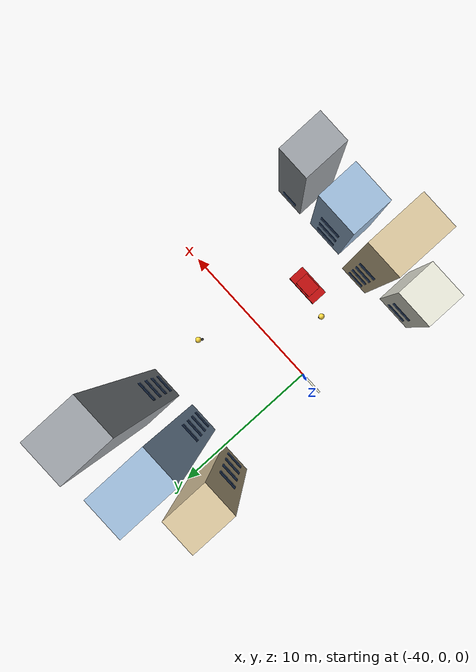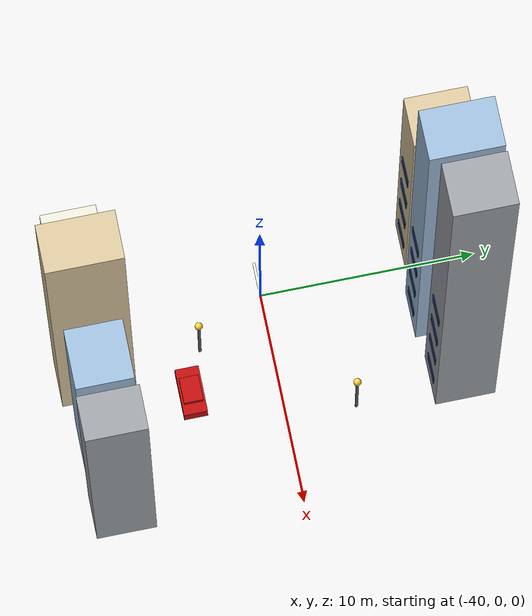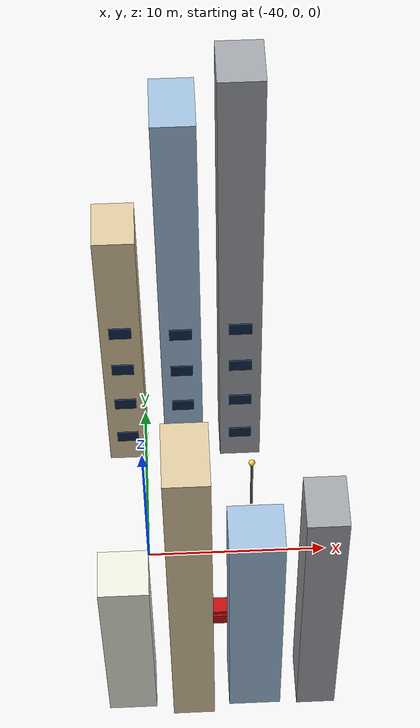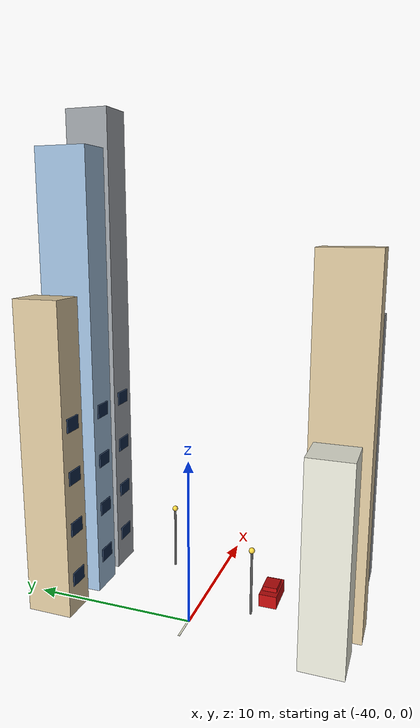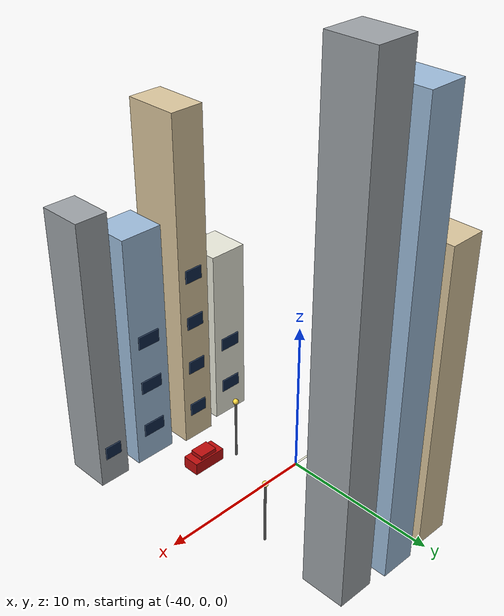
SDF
<sdf version="1.7">
 <world name="urban_street">
  <model name="white_lane_marking_00">
   <static>true</static>
   <pose>-40 0 0.055 0 0 0.0</pose>
   <link name="link">
    <collision name="collision"><geometry><box><size>3.2 0.12 0.02</size></box></geometry></collision>
    <visual name="visual">
     <geometry><box><size>3.2 0.12 0.02</size></box></geometry>
     <material>
      <ambient>0.95 0.95 0.85 1</ambient>
      <diffuse>0.95 0.95 0.85 1</diffuse>
      <specular>0.1 0.1 0.1 1</specular>
     </material>
    </visual>
   </link>
  </model>
  <model name="white_lane_marking_01">
   <static>true</static>
   <pose>-32 0 0.055 0 0 0.0</pose>
   <link name="link">
    <collision name="collision"><geometry><box><size>3.2 0.12 0.02</size></box></geometry></collision>
    <visual name="visual">
     <geometry><box><size>3.2 0.12 0.02</size></box></geometry>
     <material>
      <ambient>0.95 0.95 0.85 1</ambient>
      <diffuse>0.95 0.95 0.85 1</diffuse>
      <specular>0.1 0.1 0.1 1</specular>
     </material>
    </visual>
   </link>
  </model>
  <model name="building_facade_01">
   <static>true</static>
   <pose>-41.0 -8.2 5.94 0 0 0.0</pose>
   <link name="link">
    <collision name="collision"><geometry><box><size>2.51 2.53 11.88</size></box></geometry></collision>
    <visual name="visual">
     <geometry><box><size>2.51 2.53 11.88</size></box></geometry>
     <material>
      <ambient>0.92 0.92 0.86 1</ambient>
      <diffuse>0.92 0.92 0.86 1</diffuse>
      <specular>0.1 0.1 0.1 1</specular>
     </material>
    </visual>
   </link>
  </model>
  <model name="building_facade_01_window_0">
   <static>true</static>
   <pose>-41.0 -6.9 2.2 0 0 0.0</pose>
   <link name="link">
    <collision name="collision"><geometry><box><size>1.38 0.05 0.85</size></box></geometry></collision>
    <visual name="visual">
     <geometry><box><size>1.38 0.05 0.85</size></box></geometry>
     <material>
      <ambient>0.05 0.14 0.28 1</ambient>
      <diffuse>0.05 0.14 0.28 1</diffuse>
      <specular>0.1 0.1 0.1 1</specular>
     </material>
    </visual>
   </link>
  </model>
  <model name="building_facade_01_window_1">
   <static>true</static>
   <pose>-41.0 -6.9 5.4 0 0 0.0</pose>
   <link name="link">
    <collision name="collision"><geometry><box><size>1.38 0.05 0.85</size></box></geometry></collision>
    <visual name="visual">
     <geometry><box><size>1.38 0.05 0.85</size></box></geometry>
     <material>
      <ambient>0.05 0.14 0.28 1</ambient>
      <diffuse>0.05 0.14 0.28 1</diffuse>
      <specular>0.1 0.1 0.1 1</specular>
     </material>
    </visual>
   </link>
  </model>
  <model name="building_facade_02">
   <static>true</static>
   <pose>-37.75 -8.2 10.96 0 0 0.0</pose>
   <link name="link">
    <collision name="collision"><geometry><box><size>2.18 3.46 21.92</size></box></geometry></collision>
    <visual name="visual">
     <geometry><box><size>2.18 3.46 21.92</size></box></geometry>
     <material>
      <ambient>0.86 0.78 0.62 1</ambient>
      <diffuse>0.86 0.78 0.62 1</diffuse>
      <specular>0.1 0.1 0.1 1</specular>
     </material>
    </visual>
   </link>
  </model>
  <model name="building_facade_02_window_0">
   <static>true</static>
   <pose>-37.75 -6.44 2.2 0 0 0.0</pose>
   <link name="link">
    <collision name="collision"><geometry><box><size>1.2 0.05 0.85</size></box></geometry></collision>
    <visual name="visual">
     <geometry><box><size>1.2 0.05 0.85</size></box></geometry>
     <material>
      <ambient>0.05 0.14 0.28 1</ambient>
      <diffuse>0.05 0.14 0.28 1</diffuse>
      <specular>0.1 0.1 0.1 1</specular>
     </material>
    </visual>
   </link>
  </model>
  <model name="building_facade_02_window_1">
   <static>true</static>
   <pose>-37.75 -6.44 5.4 0 0 0.0</pose>
   <link name="link">
    <collision name="collision"><geometry><box><size>1.2 0.05 0.85</size></box></geometry></collision>
    <visual name="visual">
     <geometry><box><size>1.2 0.05 0.85</size></box></geometry>
     <material>
      <ambient>0.05 0.14 0.28 1</ambient>
      <diffuse>0.05 0.14 0.28 1</diffuse>
      <specular>0.1 0.1 0.1 1</specular>
     </material>
    </visual>
   </link>
  </model>
  <model name="building_facade_02_window_2">
   <static>true</static>
   <pose>-37.75 -6.44 8.6 0 0 0.0</pose>
   <link name="link">
    <collision name="collision"><geometry><box><size>1.2 0.05 0.85</size></box></geometry></collision>
    <visual name="visual">
     <geometry><box><size>1.2 0.05 0.85</size></box></geometry>
     <material>
      <ambient>0.05 0.14 0.28 1</ambient>
      <diffuse>0.05 0.14 0.28 1</diffuse>
      <specular>0.1 0.1 0.1 1</specular>
     </material>
    </visual>
   </link>
  </model>
  <model name="building_facade_02_window_3">
   <static>true</static>
   <pose>-37.75 -6.44 11.8 0 0 0.0</pose>
   <link name="link">
    <collision name="collision"><geometry><box><size>1.2 0.05 0.85</size></box></geometry></collision>
    <visual name="visual">
     <geometry><box><size>1.2 0.05 0.85</size></box></geometry>
     <material>
      <ambient>0.05 0.14 0.28 1</ambient>
      <diffuse>0.05 0.14 0.28 1</diffuse>
      <specular>0.1 0.1 0.1 1</specular>
     </material>
    </visual>
   </link>
  </model>
  <model name="building_facade_03">
   <static>true</static>
   <pose>-34.5 -8.2 7.77 0 0 0.0</pose>
   <link name="link">
    <collision name="collision"><geometry><box><size>2.71 2.61 15.55</size></box></geometry></collision>
    <visual name="visual">
     <geometry><box><size>2.71 2.61 15.55</size></box></geometry>
     <material>
      <ambient>0.62 0.74 0.86 1</ambient>
      <diffuse>0.62 0.74 0.86 1</diffuse>
      <specular>0.1 0.1 0.1 1</specular>
     </material>
    </visual>
   </link>
  </model>
  <model name="building_facade_03_window_0">
   <static>true</static>
   <pose>-34.5 -6.86 2.2 0 0 0.0</pose>
   <link name="link">
    <collision name="collision"><geometry><box><size>1.49 0.05 0.85</size></box></geometry></collision>
    <visual name="visual">
     <geometry><box><size>1.49 0.05 0.85</size></box></geometry>
     <material>
      <ambient>0.05 0.14 0.28 1</ambient>
      <diffuse>0.05 0.14 0.28 1</diffuse>
      <specular>0.1 0.1 0.1 1</specular>
     </material>
    </visual>
   </link>
  </model>
  <model name="building_facade_03_window_1">
   <static>true</static>
   <pose>-34.5 -6.86 5.4 0 0 0.0</pose>
   <link name="link">
    <collision name="collision"><geometry><box><size>1.49 0.05 0.85</size></box></geometry></collision>
    <visual name="visual">
     <geometry><box><size>1.49 0.05 0.85</size></box></geometry>
     <material>
      <ambient>0.05 0.14 0.28 1</ambient>
      <diffuse>0.05 0.14 0.28 1</diffuse>
      <specular>0.1 0.1 0.1 1</specular>
     </material>
    </visual>
   </link>
  </model>
  <model name="building_facade_03_window_2">
   <static>true</static>
   <pose>-34.5 -6.86 8.6 0 0 0.0</pose>
   <link name="link">
    <collision name="collision"><geometry><box><size>1.49 0.05 0.85</size></box></geometry></collision>
    <visual name="visual">
     <geometry><box><size>1.49 0.05 0.85</size></box></geometry>
     <material>
      <ambient>0.05 0.14 0.28 1</ambient>
      <diffuse>0.05 0.14 0.28 1</diffuse>
      <specular>0.1 0.1 0.1 1</specular>
     </material>
    </visual>
   </link>
  </model>
  <model name="building_facade_04">
   <static>true</static>
   <pose>-31.25 -8.2 8.82 0 0 0.0</pose>
   <link name="link">
    <collision name="collision"><geometry><box><size>2.02 2.78 17.63</size></box></geometry></collision>
    <visual name="visual">
     <geometry><box><size>2.02 2.78 17.63</size></box></geometry>
     <material>
      <ambient>0.62 0.64 0.66 1</ambient>
      <diffuse>0.62 0.64 0.66 1</diffuse>
      <specular>0.1 0.1 0.1 1</specular>
     </material>
    </visual>
   </link>
  </model>
  <model name="building_facade_04_window_0">
   <static>true</static>
   <pose>-31.25 -6.78 2.2 0 0 0.0</pose>
   <link name="link">
    <collision name="collision"><geometry><box><size>1.11 0.05 0.85</size></box></geometry></collision>
    <visual name="visual">
     <geometry><box><size>1.11 0.05 0.85</size></box></geometry>
     <material>
      <ambient>0.05 0.14 0.28 1</ambient>
      <diffuse>0.05 0.14 0.28 1</diffuse>
      <specular>0.1 0.1 0.1 1</specular>
     </material>
    </visual>
   </link>
  </model>
  <model name="building_facade_27">
   <static>true</static>
   <pose>-41.0 8.2 9.52 0 0 0.0</pose>
   <link name="link">
    <collision name="collision"><geometry><box><size>2.21 2.82 19.03</size></box></geometry></collision>
    <visual name="visual">
     <geometry><box><size>2.21 2.82 19.03</size></box></geometry>
     <material>
      <ambient>0.86 0.78 0.62 1</ambient>
      <diffuse>0.86 0.78 0.62 1</diffuse>
      <specular>0.1 0.1 0.1 1</specular>
     </material>
    </visual>
   </link>
  </model>
  <model name="building_facade_27_window_0">
   <static>true</static>
   <pose>-41.0 6.76 2.2 0 0 0.0</pose>
   <link name="link">
    <collision name="collision"><geometry><box><size>1.22 0.05 0.85</size></box></geometry></collision>
    <visual name="visual">
     <geometry><box><size>1.22 0.05 0.85</size></box></geometry>
     <material>
      <ambient>0.05 0.14 0.28 1</ambient>
      <diffuse>0.05 0.14 0.28 1</diffuse>
      <specular>0.1 0.1 0.1 1</specular>
     </material>
    </visual>
   </link>
  </model>
  <model name="building_facade_27_window_1">
   <static>true</static>
   <pose>-41.0 6.76 5.4 0 0 0.0</pose>
   <link name="link">
    <collision name="collision"><geometry><box><size>1.22 0.05 0.85</size></box></geometry></collision>
    <visual name="visual">
     <geometry><box><size>1.22 0.05 0.85</size></box></geometry>
     <material>
      <ambient>0.05 0.14 0.28 1</ambient>
      <diffuse>0.05 0.14 0.28 1</diffuse>
      <specular>0.1 0.1 0.1 1</specular>
     </material>
    </visual>
   </link>
  </model>
  <model name="building_facade_27_window_2">
   <static>true</static>
   <pose>-41.0 6.76 8.6 0 0 0.0</pose>
   <link name="link">
    <collision name="collision"><geometry><box><size>1.22 0.05 0.85</size></box></geometry></collision>
    <visual name="visual">
     <geometry><box><size>1.22 0.05 0.85</size></box></geometry>
     <material>
      <ambient>0.05 0.14 0.28 1</ambient>
      <diffuse>0.05 0.14 0.28 1</diffuse>
      <specular>0.1 0.1 0.1 1</specular>
     </material>
    </visual>
   </link>
  </model>
  <model name="building_facade_27_window_3">
   <static>true</static>
   <pose>-41.0 6.76 11.8 0 0 0.0</pose>
   <link name="link">
    <collision name="collision"><geometry><box><size>1.22 0.05 0.85</size></box></geometry></collision>
    <visual name="visual">
     <geometry><box><size>1.22 0.05 0.85</size></box></geometry>
     <material>
      <ambient>0.05 0.14 0.28 1</ambient>
      <diffuse>0.05 0.14 0.28 1</diffuse>
      <specular>0.1 0.1 0.1 1</specular>
     </material>
    </visual>
   </link>
  </model>
  <model name="building_facade_28">
   <static>true</static>
   <pose>-37.75 8.2 13.72 0 0 0.0</pose>
   <link name="link">
    <collision name="collision"><geometry><box><size>2.21 3.26 27.45</size></box></geometry></collision>
    <visual name="visual">
     <geometry><box><size>2.21 3.26 27.45</size></box></geometry>
     <material>
      <ambient>0.62 0.74 0.86 1</ambient>
      <diffuse>0.62 0.74 0.86 1</diffuse>
      <specular>0.1 0.1 0.1 1</specular>
     </material>
    </visual>
   </link>
  </model>
  <model name="building_facade_28_window_0">
   <static>true</static>
   <pose>-37.75 6.54 2.2 0 0 0.0</pose>
   <link name="link">
    <collision name="collision"><geometry><box><size>1.22 0.05 0.85</size></box></geometry></collision>
    <visual name="visual">
     <geometry><box><size>1.22 0.05 0.85</size></box></geometry>
     <material>
      <ambient>0.05 0.14 0.28 1</ambient>
      <diffuse>0.05 0.14 0.28 1</diffuse>
      <specular>0.1 0.1 0.1 1</specular>
     </material>
    </visual>
   </link>
  </model>
  <model name="building_facade_28_window_1">
   <static>true</static>
   <pose>-37.75 6.54 5.4 0 0 0.0</pose>
   <link name="link">
    <collision name="collision"><geometry><box><size>1.22 0.05 0.85</size></box></geometry></collision>
    <visual name="visual">
     <geometry><box><size>1.22 0.05 0.85</size></box></geometry>
     <material>
      <ambient>0.05 0.14 0.28 1</ambient>
      <diffuse>0.05 0.14 0.28 1</diffuse>
      <specular>0.1 0.1 0.1 1</specular>
     </material>
    </visual>
   </link>
  </model>
  <model name="building_facade_28_window_2">
   <static>true</static>
   <pose>-37.75 6.54 8.6 0 0 0.0</pose>
   <link name="link">
    <collision name="collision"><geometry><box><size>1.22 0.05 0.85</size></box></geometry></collision>
    <visual name="visual">
     <geometry><box><size>1.22 0.05 0.85</size></box></geometry>
     <material>
      <ambient>0.05 0.14 0.28 1</ambient>
      <diffuse>0.05 0.14 0.28 1</diffuse>
      <specular>0.1 0.1 0.1 1</specular>
     </material>
    </visual>
   </link>
  </model>
  <model name="building_facade_28_window_3">
   <static>true</static>
   <pose>-37.75 6.54 11.8 0 0 0.0</pose>
   <link name="link">
    <collision name="collision"><geometry><box><size>1.22 0.05 0.85</size></box></geometry></collision>
    <visual name="visual">
     <geometry><box><size>1.22 0.05 0.85</size></box></geometry>
     <material>
      <ambient>0.05 0.14 0.28 1</ambient>
      <diffuse>0.05 0.14 0.28 1</diffuse>
      <specular>0.1 0.1 0.1 1</specular>
     </material>
    </visual>
   </link>
  </model>
  <model name="building_facade_29">
   <static>true</static>
   <pose>-34.5 8.2 14.97 0 0 0.0</pose>
   <link name="link">
    <collision name="collision"><geometry><box><size>2.32 2.79 29.94</size></box></geometry></collision>
    <visual name="visual">
     <geometry><box><size>2.32 2.79 29.94</size></box></geometry>
     <material>
      <ambient>0.62 0.64 0.66 1</ambient>
      <diffuse>0.62 0.64 0.66 1</diffuse>
      <specular>0.1 0.1 0.1 1</specular>
     </material>
    </visual>
   </link>
  </model>
  <model name="building_facade_29_window_0">
   <static>true</static>
   <pose>-34.5 6.78 2.2 0 0 0.0</pose>
   <link name="link">
    <collision name="collision"><geometry><box><size>1.28 0.05 0.85</size></box></geometry></collision>
    <visual name="visual">
     <geometry><box><size>1.28 0.05 0.85</size></box></geometry>
     <material>
      <ambient>0.05 0.14 0.28 1</ambient>
      <diffuse>0.05 0.14 0.28 1</diffuse>
      <specular>0.1 0.1 0.1 1</specular>
     </material>
    </visual>
   </link>
  </model>
  <model name="building_facade_29_window_1">
   <static>true</static>
   <pose>-34.5 6.78 5.4 0 0 0.0</pose>
   <link name="link">
    <collision name="collision"><geometry><box><size>1.28 0.05 0.85</size></box></geometry></collision>
    <visual name="visual">
     <geometry><box><size>1.28 0.05 0.85</size></box></geometry>
     <material>
      <ambient>0.05 0.14 0.28 1</ambient>
      <diffuse>0.05 0.14 0.28 1</diffuse>
      <specular>0.1 0.1 0.1 1</specular>
     </material>
    </visual>
   </link>
  </model>
  <model name="building_facade_29_window_2">
   <static>true</static>
   <pose>-34.5 6.78 8.6 0 0 0.0</pose>
   <link name="link">
    <collision name="collision"><geometry><box><size>1.28 0.05 0.85</size></box></geometry></collision>
    <visual name="visual">
     <geometry><box><size>1.28 0.05 0.85</size></box></geometry>
     <material>
      <ambient>0.05 0.14 0.28 1</ambient>
      <diffuse>0.05 0.14 0.28 1</diffuse>
      <specular>0.1 0.1 0.1 1</specular>
     </material>
    </visual>
   </link>
  </model>
  <model name="building_facade_29_window_3">
   <static>true</static>
   <pose>-34.5 6.78 11.8 0 0 0.0</pose>
   <link name="link">
    <collision name="collision"><geometry><box><size>1.28 0.05 0.85</size></box></geometry></collision>
    <visual name="visual">
     <geometry><box><size>1.28 0.05 0.85</size></box></geometry>
     <material>
      <ambient>0.05 0.14 0.28 1</ambient>
      <diffuse>0.05 0.14 0.28 1</diffuse>
      <specular>0.1 0.1 0.1 1</specular>
     </material>
    </visual>
   </link>
  </model>
  <model name="street_pole_00">
   <static>true</static>
   <pose>-38.0 -3.25 2.0 0 0 0</pose>
   <link name="link">
    <collision name="collision">
     <geometry><cylinder><radius>0.07</radius><length>4.0</length></cylinder></geometry>
    </collision>
    <visual name="visual">
     <geometry><cylinder><radius>0.07</radius><length>4.0</length></cylinder></geometry>
     <material>
      <ambient>0.35 0.35 0.35 1</ambient>
      <diffuse>0.35 0.35 0.35 1</diffuse>
      <specular>0.1 0.1 0.1 1</specular>
     </material>
    </visual>
   </link>
  </model>
  <model name="lamp_head_00">
   <static>true</static>
   <pose>-38.0 -3.25 4.15 0 0 0</pose>
   <link name="link">
    <visual name="visual">
     <geometry><sphere><radius>0.18</radius></sphere></geometry>
     <material>
      <ambient>1.0 0.85 0.25 1</ambient>
      <diffuse>1.0 0.85 0.25 1</diffuse>
      <specular>0.1 0.1 0.1 1</specular>
     </material>
    </visual>
   </link>
  </model>
  <model name="street_pole_01">
   <static>true</static>
   <pose>-34.0 3.25 2.0 0 0 0</pose>
   <link name="link">
    <collision name="collision">
     <geometry><cylinder><radius>0.07</radius><length>4.0</length></cylinder></geometry>
    </collision>
    <visual name="visual">
     <geometry><cylinder><radius>0.07</radius><length>4.0</length></cylinder></geometry>
     <material>
      <ambient>0.35 0.35 0.35 1</ambient>
      <diffuse>0.35 0.35 0.35 1</diffuse>
      <specular>0.1 0.1 0.1 1</specular>
     </material>
    </visual>
   </link>
  </model>
  <model name="lamp_head_01">
   <static>true</static>
   <pose>-34.0 3.25 4.15 0 0 0</pose>
   <link name="link">
    <visual name="visual">
     <geometry><sphere><radius>0.18</radius></sphere></geometry>
     <material>
      <ambient>1.0 0.85 0.25 1</ambient>
      <diffuse>1.0 0.85 0.25 1</diffuse>
      <specular>0.1 0.1 0.1 1</specular>
     </material>
    </visual>
   </link>
  </model>
  <model name="parked_vehicle_body_00">
   <static>true</static>
   <pose>-36 -4.05 0.45 0 0 0.0</pose>
   <link name="link">
    <collision name="collision"><geometry><box><size>2.2 1.1 0.8</size></box></geometry></collision>
    <visual name="visual">
     <geometry><box><size>2.2 1.1 0.8</size></box></geometry>
     <material>
      <ambient>0.75 0.05 0.05 1</ambient>
      <diffuse>0.75 0.05 0.05 1</diffuse>
      <specular>0.1 0.1 0.1 1</specular>
     </material>
    </visual>
   </link>
  </model>
  <model name="parked_vehicle_roof_00">
   <static>true</static>
   <pose>-36 -4.05 0.95 0 0 0.0</pose>
   <link name="link">
    <collision name="collision"><geometry><box><size>1.2 0.9 0.35</size></box></geometry></collision>
    <visual name="visual">
     <geometry><box><size>1.2 0.9 0.35</size></box></geometry>
     <material>
      <ambient>0.75 0.05 0.05 1</ambient>
      <diffuse>0.75 0.05 0.05 1</diffuse>
      <specular>0.1 0.1 0.1 1</specular>
     </material>
    </visual>
   </link>
  </model>
 </world>
</sdf>
